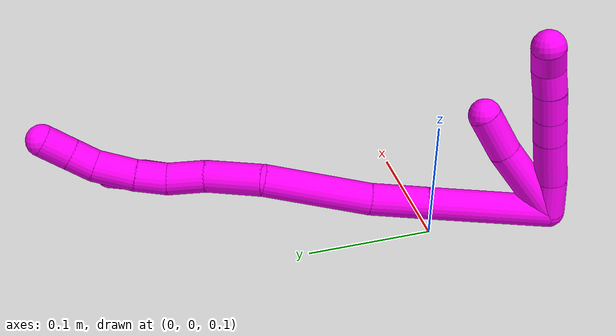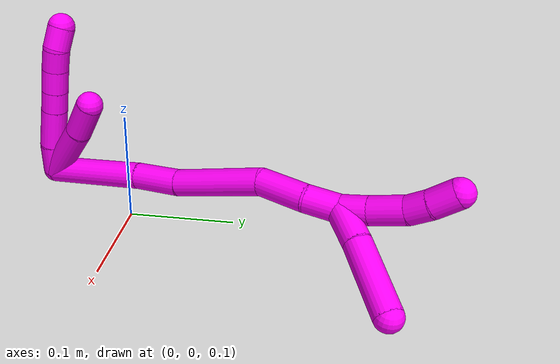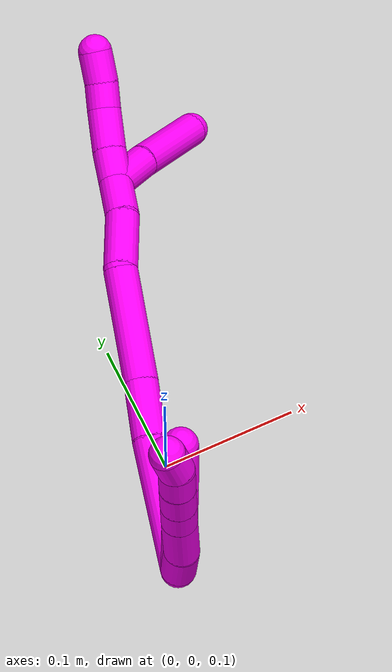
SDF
<sdf version="1.7">
 <world name="default">
  <model name="10">
   <static>0</static>
   <link name="10">
    <collision name="collision-cylinder-e_1_2_8">
     <pose>-0.000748 -0.001104 0.014668 0.075092 -0.050795 -0.001908</pose>
     <geometry><cylinder><radius>0.0125</radius><length>0.029457</length></cylinder></geometry>
     <surface>
      <friction><ode><mu>1.16</mu><mu2>1.16</mu2><slip1>0</slip1><slip2>0</slip2></ode></friction>
      <contact><ode><kp>1e+06</kp><kd>1</kd><max_vel>0</max_vel><min_depth>0.001</min_depth></ode></contact>
     </surface>
    </collision>
    <visual name="visual-cylinder-e_1_2_8">
     <pose>-0.000748 -0.001104 0.014668 0.075092 -0.050795 -0.001908</pose>
     <geometry><cylinder><radius>0.0125</radius><length>0.029457</length></cylinder></geometry>
     <material><ambient>1 0 0.964706 1</ambient></material>
    </visual>
    <collision name="collision-cylinder-e_2_8_9">
     <pose>-0.003942 -0.001189 0.048005 -0.054505 -0.130115 0.003552</pose>
     <geometry><cylinder><radius>0.0125</radius><length>0.037711</length></cylinder></geometry>
     <surface>
      <friction><ode><mu>1.16</mu><mu2>1.16</mu2><slip1>0</slip1><slip2>0</slip2></ode></friction>
      <contact><ode><kp>1e+06</kp><kd>1</kd><max_vel>0</max_vel><min_depth>0.001</min_depth></ode></contact>
     </surface>
    </collision>
    <visual name="visual-cylinder-e_2_8_9">
     <pose>-0.003942 -0.001189 0.048005 -0.054505 -0.130115 0.003552</pose>
     <geometry><cylinder><radius>0.0125</radius><length>0.037711</length></cylinder></geometry>
     <material><ambient>1 0 0.964706 1</ambient></material>
    </visual>
    <collision name="collision-cylinder-e_3_9_10">
     <pose>-0.007626 0.000158 0.076591 -0.033083 -0.124022 0.002054</pose>
     <geometry><cylinder><radius>0.0125</radius><length>0.020001</length></cylinder></geometry>
     <surface>
      <friction><ode><mu>1.16</mu><mu2>1.16</mu2><slip1>0</slip1><slip2>0</slip2></ode></friction>
      <contact><ode><kp>1e+06</kp><kd>1</kd><max_vel>0</max_vel><min_depth>0.001</min_depth></ode></contact>
     </surface>
    </collision>
    <visual name="visual-cylinder-e_3_9_10">
     <pose>-0.007626 0.000158 0.076591 -0.033083 -0.124022 0.002054</pose>
     <geometry><cylinder><radius>0.0125</radius><length>0.020001</length></cylinder></geometry>
     <material><ambient>1 0 0.964706 1</ambient></material>
    </visual>
    <collision name="collision-cylinder-e_4_10_11">
     <pose>-0.010252 0.000869 0.097283 -0.035502 -0.128142 0.002278</pose>
     <geometry><cylinder><radius>0.0125</radius><length>0.021739</length></cylinder></geometry>
     <surface>
      <friction><ode><mu>1.16</mu><mu2>1.16</mu2><slip1>0</slip1><slip2>0</slip2></ode></friction>
      <contact><ode><kp>1e+06</kp><kd>1</kd><max_vel>0</max_vel><min_depth>0.001</min_depth></ode></contact>
     </surface>
    </collision>
    <visual name="visual-cylinder-e_4_10_11">
     <pose>-0.010252 0.000869 0.097283 -0.035502 -0.128142 0.002278</pose>
     <geometry><cylinder><radius>0.0125</radius><length>0.021739</length></cylinder></geometry>
     <material><ambient>1 0 0.964706 1</ambient></material>
    </visual>
    <collision name="collision-cylinder-e_5_11_12">
     <pose>-0.012643 0.002086 0.118202 -0.082008 -0.09814 0.00403</pose>
     <geometry><cylinder><radius>0.0125</radius><length>0.020458</length></cylinder></geometry>
     <surface>
      <friction><ode><mu>1.16</mu><mu2>1.16</mu2><slip1>0</slip1><slip2>0</slip2></ode></friction>
      <contact><ode><kp>1e+06</kp><kd>1</kd><max_vel>0</max_vel><min_depth>0.001</min_depth></ode></contact>
     </surface>
    </collision>
    <visual name="visual-cylinder-e_5_11_12">
     <pose>-0.012643 0.002086 0.118202 -0.082008 -0.09814 0.00403</pose>
     <geometry><cylinder><radius>0.0125</radius><length>0.020458</length></cylinder></geometry>
     <material><ambient>1 0 0.964706 1</ambient></material>
    </visual>
    <collision name="collision-cylinder-e_6_12_6">
     <pose>-0.017435 0.004314 0.137842 -0.145813 -0.376081 0.027794</pose>
     <geometry><cylinder><radius>0.0125</radius><length>0.020634</length></cylinder></geometry>
     <surface>
      <friction><ode><mu>1.16</mu><mu2>1.16</mu2><slip1>0</slip1><slip2>0</slip2></ode></friction>
      <contact><ode><kp>1e+06</kp><kd>1</kd><max_vel>0</max_vel><min_depth>0.001</min_depth></ode></contact>
     </surface>
    </collision>
    <visual name="visual-cylinder-e_6_12_6">
     <pose>-0.017435 0.004314 0.137842 -0.145813 -0.376081 0.027794</pose>
     <geometry><cylinder><radius>0.0125</radius><length>0.020634</length></cylinder></geometry>
     <material><ambient>1 0 0.964706 1</ambient></material>
    </visual>
    <collision name="collision-cylinder-e_1_2_13">
     <pose>0.00379 0.015237 0.028385 -0.492652 0.117093 -0.029473</pose>
     <geometry><cylinder><radius>0.0125</radius><length>0.064876</length></cylinder></geometry>
     <surface>
      <friction><ode><mu>1.16</mu><mu2>1.16</mu2><slip1>0</slip1><slip2>0</slip2></ode></friction>
      <contact><ode><kp>1e+06</kp><kd>1</kd><max_vel>0</max_vel><min_depth>0.001</min_depth></ode></contact>
     </surface>
    </collision>
    <visual name="visual-cylinder-e_1_2_13">
     <pose>0.00379 0.015237 0.028385 -0.492652 0.117093 -0.029473</pose>
     <geometry><cylinder><radius>0.0125</radius><length>0.064876</length></cylinder></geometry>
     <material><ambient>1 0 0.964706 1</ambient></material>
    </visual>
    <collision name="collision-cylinder-e_2_13_5">
     <pose>0.008452 0.037053 0.073029 -0.384478 0.04969 -0.009674</pose>
     <geometry><cylinder><radius>0.0125</radius><length>0.035124</length></cylinder></geometry>
     <surface>
      <friction><ode><mu>1.16</mu><mu2>1.16</mu2><slip1>0</slip1><slip2>0</slip2></ode></friction>
      <contact><ode><kp>1e+06</kp><kd>1</kd><max_vel>0</max_vel><min_depth>0.001</min_depth></ode></contact>
     </surface>
    </collision>
    <visual name="visual-cylinder-e_2_13_5">
     <pose>0.008452 0.037053 0.073029 -0.384478 0.04969 -0.009674</pose>
     <geometry><cylinder><radius>0.0125</radius><length>0.035124</length></cylinder></geometry>
     <material><ambient>1 0 0.964706 1</ambient></material>
    </visual>
    <collision name="collision-cylinder-e_1_2_14">
     <pose>0.006083 0.046355 0.011394 -1.32978 0.12675 -0.09942</pose>
     <geometry><cylinder><radius>0.0125</radius><length>0.096241</length></cylinder></geometry>
     <surface>
      <friction><ode><mu>1.16</mu><mu2>1.16</mu2><slip1>0</slip1><slip2>0</slip2></ode></friction>
      <contact><ode><kp>1e+06</kp><kd>1</kd><max_vel>0</max_vel><min_depth>0.001</min_depth></ode></contact>
     </surface>
    </collision>
    <visual name="visual-cylinder-e_1_2_14">
     <pose>0.006083 0.046355 0.011394 -1.32978 0.12675 -0.09942</pose>
     <geometry><cylinder><radius>0.0125</radius><length>0.096241</length></cylinder></geometry>
     <material><ambient>1 0 0.964706 1</ambient></material>
    </visual>
    <collision name="collision-cylinder-e_2_14_15">
     <pose>0.01664 0.11387 0.027178 -1.36621 0.20415 -0.166334</pose>
     <geometry><cylinder><radius>0.0125</radius><length>0.044139</length></cylinder></geometry>
     <surface>
      <friction><ode><mu>1.16</mu><mu2>1.16</mu2><slip1>0</slip1><slip2>0</slip2></ode></friction>
      <contact><ode><kp>1e+06</kp><kd>1</kd><max_vel>0</max_vel><min_depth>0.001</min_depth></ode></contact>
     </surface>
    </collision>
    <visual name="visual-cylinder-e_2_14_15">
     <pose>0.01664 0.11387 0.027178 -1.36621 0.20415 -0.166334</pose>
     <geometry><cylinder><radius>0.0125</radius><length>0.044139</length></cylinder></geometry>
     <material><ambient>1 0 0.964706 1</ambient></material>
    </visual>
    <collision name="collision-cylinder-e_3_15_16">
     <pose>0.026826 0.174092 0.046183 -1.21278 0.13611 -0.094476</pose>
     <geometry><cylinder><radius>0.0125</radius><length>0.08419</length></cylinder></geometry>
     <surface>
      <friction><ode><mu>1.16</mu><mu2>1.16</mu2><slip1>0</slip1><slip2>0</slip2></ode></friction>
      <contact><ode><kp>1e+06</kp><kd>1</kd><max_vel>0</max_vel><min_depth>0.001</min_depth></ode></contact>
     </surface>
    </collision>
    <visual name="visual-cylinder-e_3_15_16">
     <pose>0.026826 0.174092 0.046183 -1.21278 0.13611 -0.094476</pose>
     <geometry><cylinder><radius>0.0125</radius><length>0.08419</length></cylinder></geometry>
     <material><ambient>1 0 0.964706 1</ambient></material>
    </visual>
    <collision name="collision-cylinder-e_4_16_17">
     <pose>0.040906 0.233992 0.06314 -1.45884 0.379688 -0.340211</pose>
     <geometry><cylinder><radius>0.0125</radius><length>0.045156</length></cylinder></geometry>
     <surface>
      <friction><ode><mu>1.16</mu><mu2>1.16</mu2><slip1>0</slip1><slip2>0</slip2></ode></friction>
      <contact><ode><kp>1e+06</kp><kd>1</kd><max_vel>0</max_vel><min_depth>0.001</min_depth></ode></contact>
     </surface>
    </collision>
    <visual name="visual-cylinder-e_4_16_17">
     <pose>0.040906 0.233992 0.06314 -1.45884 0.379688 -0.340211</pose>
     <geometry><cylinder><radius>0.0125</radius><length>0.045156</length></cylinder></geometry>
     <material><ambient>1 0 0.964706 1</ambient></material>
    </visual>
    <collision name="collision-cylinder-e_5_17_1">
     <pose>0.052248 0.26966 0.066095 -1.5295 0.19774 -0.189787</pose>
     <geometry><cylinder><radius>0.0125</radius><length>0.030274</length></cylinder></geometry>
     <surface>
      <friction><ode><mu>1.16</mu><mu2>1.16</mu2><slip1>0</slip1><slip2>0</slip2></ode></friction>
      <contact><ode><kp>1e+06</kp><kd>1</kd><max_vel>0</max_vel><min_depth>0.001</min_depth></ode></contact>
     </surface>
    </collision>
    <visual name="visual-cylinder-e_5_17_1">
     <pose>0.052248 0.26966 0.066095 -1.5295 0.19774 -0.189787</pose>
     <geometry><cylinder><radius>0.0125</radius><length>0.030274</length></cylinder></geometry>
     <material><ambient>1 0 0.964706 1</ambient></material>
    </visual>
    <collision name="collision-cylinder-e_1_1_18">
     <pose>0.056847 0.296135 0.070228 -1.27723 0.132827 -0.098674</pose>
     <geometry><cylinder><radius>0.0125</radius><length>0.024548</length></cylinder></geometry>
     <surface>
      <friction><ode><mu>1.16</mu><mu2>1.16</mu2><slip1>0</slip1><slip2>0</slip2></ode></friction>
      <contact><ode><kp>1e+06</kp><kd>1</kd><max_vel>0</max_vel><min_depth>0.001</min_depth></ode></contact>
     </surface>
    </collision>
    <visual name="visual-cylinder-e_1_1_18">
     <pose>0.056847 0.296135 0.070228 -1.27723 0.132827 -0.098674</pose>
     <geometry><cylinder><radius>0.0125</radius><length>0.024548</length></cylinder></geometry>
     <material><ambient>1 0 0.964706 1</ambient></material>
    </visual>
    <collision name="collision-cylinder-e_2_18_19">
     <pose>0.061239 0.322152 0.079964 -1.16266 0.174842 -0.115049</pose>
     <geometry><cylinder><radius>0.0125</radius><length>0.031801</length></cylinder></geometry>
     <surface>
      <friction><ode><mu>1.16</mu><mu2>1.16</mu2><slip1>0</slip1><slip2>0</slip2></ode></friction>
      <contact><ode><kp>1e+06</kp><kd>1</kd><max_vel>0</max_vel><min_depth>0.001</min_depth></ode></contact>
     </surface>
    </collision>
    <visual name="visual-cylinder-e_2_18_19">
     <pose>0.061239 0.322152 0.079964 -1.16266 0.174842 -0.115049</pose>
     <geometry><cylinder><radius>0.0125</radius><length>0.031801</length></cylinder></geometry>
     <material><ambient>1 0 0.964706 1</ambient></material>
    </visual>
    <collision name="collision-cylinder-e_3_19_20">
     <pose>0.065378 0.344344 0.092331 -0.90416 0.137106 -0.066662</pose>
     <geometry><cylinder><radius>0.0125</radius><length>0.020089</length></cylinder></geometry>
     <surface>
      <friction><ode><mu>1.16</mu><mu2>1.16</mu2><slip1>0</slip1><slip2>0</slip2></ode></friction>
      <contact><ode><kp>1e+06</kp><kd>1</kd><max_vel>0</max_vel><min_depth>0.001</min_depth></ode></contact>
     </surface>
    </collision>
    <visual name="visual-cylinder-e_3_19_20">
     <pose>0.065378 0.344344 0.092331 -0.90416 0.137106 -0.066662</pose>
     <geometry><cylinder><radius>0.0125</radius><length>0.020089</length></cylinder></geometry>
     <material><ambient>1 0 0.964706 1</ambient></material>
    </visual>
    <collision name="collision-cylinder-e_4_20_4">
     <pose>0.066885 0.360979 0.106299 -0.845495 0.011395 -0.005126</pose>
     <geometry><cylinder><radius>0.0125</radius><length>0.023562</length></cylinder></geometry>
     <surface>
      <friction><ode><mu>1.16</mu><mu2>1.16</mu2><slip1>0</slip1><slip2>0</slip2></ode></friction>
      <contact><ode><kp>1e+06</kp><kd>1</kd><max_vel>0</max_vel><min_depth>0.001</min_depth></ode></contact>
     </surface>
    </collision>
    <visual name="visual-cylinder-e_4_20_4">
     <pose>0.066885 0.360979 0.106299 -0.845495 0.011395 -0.005126</pose>
     <geometry><cylinder><radius>0.0125</radius><length>0.023562</length></cylinder></geometry>
     <material><ambient>1 0 0.964706 1</ambient></material>
    </visual>
    <collision name="collision-cylinder-e_1_1_21">
     <pose>0.069673 0.29372 0.062911 -1.9611 0.966371 -1.3288</pose>
     <geometry><cylinder><radius>0.0125</radius><length>0.035126</length></cylinder></geometry>
     <surface>
      <friction><ode><mu>1.16</mu><mu2>1.16</mu2><slip1>0</slip1><slip2>0</slip2></ode></friction>
      <contact><ode><kp>1e+06</kp><kd>1</kd><max_vel>0</max_vel><min_depth>0.001</min_depth></ode></contact>
     </surface>
    </collision>
    <visual name="visual-cylinder-e_1_1_21">
     <pose>0.069673 0.29372 0.062911 -1.9611 0.966371 -1.3288</pose>
     <geometry><cylinder><radius>0.0125</radius><length>0.035126</length></cylinder></geometry>
     <material><ambient>1 0 0.964706 1</ambient></material>
    </visual>
    <collision name="collision-cylinder-e_2_21_3">
     <pose>0.110748 0.31886 0.049614 -2.10905 0.962745 -1.48779</pose>
     <geometry><cylinder><radius>0.0125</radius><length>0.064874</length></cylinder></geometry>
     <surface>
      <friction><ode><mu>1.16</mu><mu2>1.16</mu2><slip1>0</slip1><slip2>0</slip2></ode></friction>
      <contact><ode><kp>1e+06</kp><kd>1</kd><max_vel>0</max_vel><min_depth>0.001</min_depth></ode></contact>
     </surface>
    </collision>
    <visual name="visual-cylinder-e_2_21_3">
     <pose>0.110748 0.31886 0.049614 -2.10905 0.962745 -1.48779</pose>
     <geometry><cylinder><radius>0.0125</radius><length>0.064874</length></cylinder></geometry>
     <material><ambient>1 0 0.964706 1</ambient></material>
    </visual>
    <collision name="collision-sphere-3">
     <pose>0.137371 0.33477 0.040115 0 -0 0</pose>
     <geometry><sphere><radius>0.0125</radius></sphere></geometry>
     <surface>
      <friction><ode><mu>1.16</mu><mu2>1.16</mu2><slip1>0</slip1><slip2>0</slip2></ode></friction>
      <contact><ode><kp>1e+06</kp><kd>1</kd><max_vel>0</max_vel><min_depth>0.001</min_depth></ode></contact>
     </surface>
    </collision>
    <visual name="visual-sphere-3">
     <pose>0.137371 0.33477 0.040115 0 -0 0</pose>
     <geometry><sphere><radius>0.0125</radius></sphere></geometry>
     <material><ambient>1 0 0.964706 1</ambient></material>
    </visual>
    <collision name="collision-sphere-21">
     <pose>0.084125 0.30295 0.059113 0 -0 0</pose>
     <geometry><sphere><radius>0.0125</radius></sphere></geometry>
     <surface>
      <friction><ode><mu>1.16</mu><mu2>1.16</mu2><slip1>0</slip1><slip2>0</slip2></ode></friction>
      <contact><ode><kp>1e+06</kp><kd>1</kd><max_vel>0</max_vel><min_depth>0.001</min_depth></ode></contact>
     </surface>
    </collision>
    <visual name="visual-sphere-21">
     <pose>0.084125 0.30295 0.059113 0 -0 0</pose>
     <geometry><sphere><radius>0.0125</radius></sphere></geometry>
     <material><ambient>1 0 0.964706 1</ambient></material>
    </visual>
    <collision name="collision-sphere-4">
     <pose>0.067019 0.369794 0.114113 0 -0 0</pose>
     <geometry><sphere><radius>0.0125</radius></sphere></geometry>
     <surface>
      <friction><ode><mu>1.16</mu><mu2>1.16</mu2><slip1>0</slip1><slip2>0</slip2></ode></friction>
      <contact><ode><kp>1e+06</kp><kd>1</kd><max_vel>0</max_vel><min_depth>0.001</min_depth></ode></contact>
     </surface>
    </collision>
    <visual name="visual-sphere-4">
     <pose>0.067019 0.369794 0.114113 0 -0 0</pose>
     <geometry><sphere><radius>0.0125</radius></sphere></geometry>
     <material><ambient>1 0 0.964706 1</ambient></material>
    </visual>
    <collision name="collision-sphere-20">
     <pose>0.066751 0.352164 0.098484 0 -0 0</pose>
     <geometry><sphere><radius>0.0125</radius></sphere></geometry>
     <surface>
      <friction><ode><mu>1.16</mu><mu2>1.16</mu2><slip1>0</slip1><slip2>0</slip2></ode></friction>
      <contact><ode><kp>1e+06</kp><kd>1</kd><max_vel>0</max_vel><min_depth>0.001</min_depth></ode></contact>
     </surface>
    </collision>
    <visual name="visual-sphere-20">
     <pose>0.066751 0.352164 0.098484 0 -0 0</pose>
     <geometry><sphere><radius>0.0125</radius></sphere></geometry>
     <material><ambient>1 0 0.964706 1</ambient></material>
    </visual>
    <collision name="collision-sphere-12">
     <pose>-0.013645 0.002919 0.128348 0 -0 0</pose>
     <geometry><sphere><radius>0.0125</radius></sphere></geometry>
     <surface>
      <friction><ode><mu>1.16</mu><mu2>1.16</mu2><slip1>0</slip1><slip2>0</slip2></ode></friction>
      <contact><ode><kp>1e+06</kp><kd>1</kd><max_vel>0</max_vel><min_depth>0.001</min_depth></ode></contact>
     </surface>
    </collision>
    <visual name="visual-sphere-12">
     <pose>-0.013645 0.002919 0.128348 0 -0 0</pose>
     <geometry><sphere><radius>0.0125</radius></sphere></geometry>
     <material><ambient>1 0 0.964706 1</ambient></material>
    </visual>
    <collision name="collision-sphere-11">
     <pose>-0.011641 0.001252 0.108056 0 -0 0</pose>
     <geometry><sphere><radius>0.0125</radius></sphere></geometry>
     <surface>
      <friction><ode><mu>1.16</mu><mu2>1.16</mu2><slip1>0</slip1><slip2>0</slip2></ode></friction>
      <contact><ode><kp>1e+06</kp><kd>1</kd><max_vel>0</max_vel><min_depth>0.001</min_depth></ode></contact>
     </surface>
    </collision>
    <visual name="visual-sphere-11">
     <pose>-0.011641 0.001252 0.108056 0 -0 0</pose>
     <geometry><sphere><radius>0.0125</radius></sphere></geometry>
     <material><ambient>1 0 0.964706 1</ambient></material>
    </visual>
    <collision name="collision-sphere-10">
     <pose>-0.008863 0.000486 0.086509 0 -0 0</pose>
     <geometry><sphere><radius>0.0125</radius></sphere></geometry>
     <surface>
      <friction><ode><mu>1.16</mu><mu2>1.16</mu2><slip1>0</slip1><slip2>0</slip2></ode></friction>
      <contact><ode><kp>1e+06</kp><kd>1</kd><max_vel>0</max_vel><min_depth>0.001</min_depth></ode></contact>
     </surface>
    </collision>
    <visual name="visual-sphere-10">
     <pose>-0.008863 0.000486 0.086509 0 -0 0</pose>
     <geometry><sphere><radius>0.0125</radius></sphere></geometry>
     <material><ambient>1 0 0.964706 1</ambient></material>
    </visual>
    <collision name="collision-sphere-9">
     <pose>-0.006389 -0.00017 0.066673 0 -0 0</pose>
     <geometry><sphere><radius>0.0125</radius></sphere></geometry>
     <surface>
      <friction><ode><mu>1.16</mu><mu2>1.16</mu2><slip1>0</slip1><slip2>0</slip2></ode></friction>
      <contact><ode><kp>1e+06</kp><kd>1</kd><max_vel>0</max_vel><min_depth>0.001</min_depth></ode></contact>
     </surface>
    </collision>
    <visual name="visual-sphere-9">
     <pose>-0.006389 -0.00017 0.066673 0 -0 0</pose>
     <geometry><sphere><radius>0.0125</radius></sphere></geometry>
     <material><ambient>1 0 0.964706 1</ambient></material>
    </visual>
    <collision name="collision-sphere-2">
     <geometry><sphere><radius>0.0125</radius></sphere></geometry>
     <surface>
      <friction><ode><mu>1.16</mu><mu2>1.16</mu2><slip1>0</slip1><slip2>0</slip2></ode></friction>
      <contact><ode><kp>1e+06</kp><kd>1</kd><max_vel>0</max_vel><min_depth>0.001</min_depth></ode></contact>
     </surface>
    </collision>
    <visual name="visual-sphere-2">
     <geometry><sphere><radius>0.0125</radius></sphere></geometry>
     <material><ambient>1 0 0.964706 1</ambient></material>
    </visual>
    <collision name="collision-sphere-19">
     <pose>0.064005 0.336524 0.086178 0 -0 0</pose>
     <geometry><sphere><radius>0.0125</radius></sphere></geometry>
     <surface>
      <friction><ode><mu>1.16</mu><mu2>1.16</mu2><slip1>0</slip1><slip2>0</slip2></ode></friction>
      <contact><ode><kp>1e+06</kp><kd>1</kd><max_vel>0</max_vel><min_depth>0.001</min_depth></ode></contact>
     </surface>
    </collision>
    <visual name="visual-sphere-19">
     <pose>0.064005 0.336524 0.086178 0 -0 0</pose>
     <geometry><sphere><radius>0.0125</radius></sphere></geometry>
     <material><ambient>1 0 0.964706 1</ambient></material>
    </visual>
    <collision name="collision-sphere-8">
     <pose>-0.001496 -0.002207 0.029336 0 -0 0</pose>
     <geometry><sphere><radius>0.0125</radius></sphere></geometry>
     <surface>
      <friction><ode><mu>1.16</mu><mu2>1.16</mu2><slip1>0</slip1><slip2>0</slip2></ode></friction>
      <contact><ode><kp>1e+06</kp><kd>1</kd><max_vel>0</max_vel><min_depth>0.001</min_depth></ode></contact>
     </surface>
    </collision>
    <visual name="visual-sphere-8">
     <pose>-0.001496 -0.002207 0.029336 0 -0 0</pose>
     <geometry><sphere><radius>0.0125</radius></sphere></geometry>
     <material><ambient>1 0 0.964706 1</ambient></material>
    </visual>
    <collision name="collision-sphere-6">
     <pose>-0.021224 0.005708 0.147336 0 -0 0</pose>
     <geometry><sphere><radius>0.0125</radius></sphere></geometry>
     <surface>
      <friction><ode><mu>1.16</mu><mu2>1.16</mu2><slip1>0</slip1><slip2>0</slip2></ode></friction>
      <contact><ode><kp>1e+06</kp><kd>1</kd><max_vel>0</max_vel><min_depth>0.001</min_depth></ode></contact>
     </surface>
    </collision>
    <visual name="visual-sphere-6">
     <pose>-0.021224 0.005708 0.147336 0 -0 0</pose>
     <geometry><sphere><radius>0.0125</radius></sphere></geometry>
     <material><ambient>1 0 0.964706 1</ambient></material>
    </visual>
    <collision name="collision-sphere-13">
     <pose>0.007579 0.030474 0.05677 0 -0 0</pose>
     <geometry><sphere><radius>0.0125</radius></sphere></geometry>
     <surface>
      <friction><ode><mu>1.16</mu><mu2>1.16</mu2><slip1>0</slip1><slip2>0</slip2></ode></friction>
      <contact><ode><kp>1e+06</kp><kd>1</kd><max_vel>0</max_vel><min_depth>0.001</min_depth></ode></contact>
     </surface>
    </collision>
    <visual name="visual-sphere-13">
     <pose>0.007579 0.030474 0.05677 0 -0 0</pose>
     <geometry><sphere><radius>0.0125</radius></sphere></geometry>
     <material><ambient>1 0 0.964706 1</ambient></material>
    </visual>
    <collision name="collision-sphere-5">
     <pose>0.009324 0.043632 0.089289 0 -0 0</pose>
     <geometry><sphere><radius>0.0125</radius></sphere></geometry>
     <surface>
      <friction><ode><mu>1.16</mu><mu2>1.16</mu2><slip1>0</slip1><slip2>0</slip2></ode></friction>
      <contact><ode><kp>1e+06</kp><kd>1</kd><max_vel>0</max_vel><min_depth>0.001</min_depth></ode></contact>
     </surface>
    </collision>
    <visual name="visual-sphere-5">
     <pose>0.009324 0.043632 0.089289 0 -0 0</pose>
     <geometry><sphere><radius>0.0125</radius></sphere></geometry>
     <material><ambient>1 0 0.964706 1</ambient></material>
    </visual>
    <collision name="collision-sphere-14">
     <pose>0.012166 0.092709 0.022787 0 -0 0</pose>
     <geometry><sphere><radius>0.0125</radius></sphere></geometry>
     <surface>
      <friction><ode><mu>1.16</mu><mu2>1.16</mu2><slip1>0</slip1><slip2>0</slip2></ode></friction>
      <contact><ode><kp>1e+06</kp><kd>1</kd><max_vel>0</max_vel><min_depth>0.001</min_depth></ode></contact>
     </surface>
    </collision>
    <visual name="visual-sphere-14">
     <pose>0.012166 0.092709 0.022787 0 -0 0</pose>
     <geometry><sphere><radius>0.0125</radius></sphere></geometry>
     <material><ambient>1 0 0.964706 1</ambient></material>
    </visual>
    <collision name="collision-sphere-15">
     <pose>0.021114 0.13503 0.031568 0 -0 0</pose>
     <geometry><sphere><radius>0.0125</radius></sphere></geometry>
     <surface>
      <friction><ode><mu>1.16</mu><mu2>1.16</mu2><slip1>0</slip1><slip2>0</slip2></ode></friction>
      <contact><ode><kp>1e+06</kp><kd>1</kd><max_vel>0</max_vel><min_depth>0.001</min_depth></ode></contact>
     </surface>
    </collision>
    <visual name="visual-sphere-15">
     <pose>0.021114 0.13503 0.031568 0 -0 0</pose>
     <geometry><sphere><radius>0.0125</radius></sphere></geometry>
     <material><ambient>1 0 0.964706 1</ambient></material>
    </visual>
    <collision name="collision-sphere-16">
     <pose>0.032538 0.213153 0.060797 0 -0 0</pose>
     <geometry><sphere><radius>0.0125</radius></sphere></geometry>
     <surface>
      <friction><ode><mu>1.16</mu><mu2>1.16</mu2><slip1>0</slip1><slip2>0</slip2></ode></friction>
      <contact><ode><kp>1e+06</kp><kd>1</kd><max_vel>0</max_vel><min_depth>0.001</min_depth></ode></contact>
     </surface>
    </collision>
    <visual name="visual-sphere-16">
     <pose>0.032538 0.213153 0.060797 0 -0 0</pose>
     <geometry><sphere><radius>0.0125</radius></sphere></geometry>
     <material><ambient>1 0 0.964706 1</ambient></material>
    </visual>
    <collision name="collision-sphere-17">
     <pose>0.049275 0.254831 0.065483 0 -0 0</pose>
     <geometry><sphere><radius>0.0125</radius></sphere></geometry>
     <surface>
      <friction><ode><mu>1.16</mu><mu2>1.16</mu2><slip1>0</slip1><slip2>0</slip2></ode></friction>
      <contact><ode><kp>1e+06</kp><kd>1</kd><max_vel>0</max_vel><min_depth>0.001</min_depth></ode></contact>
     </surface>
    </collision>
    <visual name="visual-sphere-17">
     <pose>0.049275 0.254831 0.065483 0 -0 0</pose>
     <geometry><sphere><radius>0.0125</radius></sphere></geometry>
     <material><ambient>1 0 0.964706 1</ambient></material>
    </visual>
    <collision name="collision-sphere-1">
     <pose>0.055222 0.284489 0.066708 0 -0 0</pose>
     <geometry><sphere><radius>0.0125</radius></sphere></geometry>
     <surface>
      <friction><ode><mu>1.16</mu><mu2>1.16</mu2><slip1>0</slip1><slip2>0</slip2></ode></friction>
      <contact><ode><kp>1e+06</kp><kd>1</kd><max_vel>0</max_vel><min_depth>0.001</min_depth></ode></contact>
     </surface>
    </collision>
    <visual name="visual-sphere-1">
     <pose>0.055222 0.284489 0.066708 0 -0 0</pose>
     <geometry><sphere><radius>0.0125</radius></sphere></geometry>
     <material><ambient>1 0 0.964706 1</ambient></material>
    </visual>
    <collision name="collision-sphere-18">
     <pose>0.058473 0.30778 0.073749 0 -0 0</pose>
     <geometry><sphere><radius>0.0125</radius></sphere></geometry>
     <surface>
      <friction><ode><mu>1.16</mu><mu2>1.16</mu2><slip1>0</slip1><slip2>0</slip2></ode></friction>
      <contact><ode><kp>1e+06</kp><kd>1</kd><max_vel>0</max_vel><min_depth>0.001</min_depth></ode></contact>
     </surface>
    </collision>
    <visual name="visual-sphere-18">
     <pose>0.058473 0.30778 0.073749 0 -0 0</pose>
     <geometry><sphere><radius>0.0125</radius></sphere></geometry>
     <material><ambient>1 0 0.964706 1</ambient></material>
    </visual>
    <inertial>
     <pose>0.029666 0.145574 0.054199 0 -0 0</pose>
     <mass>0.75</mass>
     <inertia>
      <ixx>0.000181</ixx>
      <ixy>0</ixy>
      <ixz>0</ixz>
      <iyy>0.00011</iyy>
      <iyz>0</iyz>
      <izz>-0.000208</izz>
     </inertia>
    </inertial>
   </link>
   <pose>-0.030358 -0.085249 0.127214 -0.109889 0.151794 -0.084873</pose>
  </model>
 </world>
</sdf>
